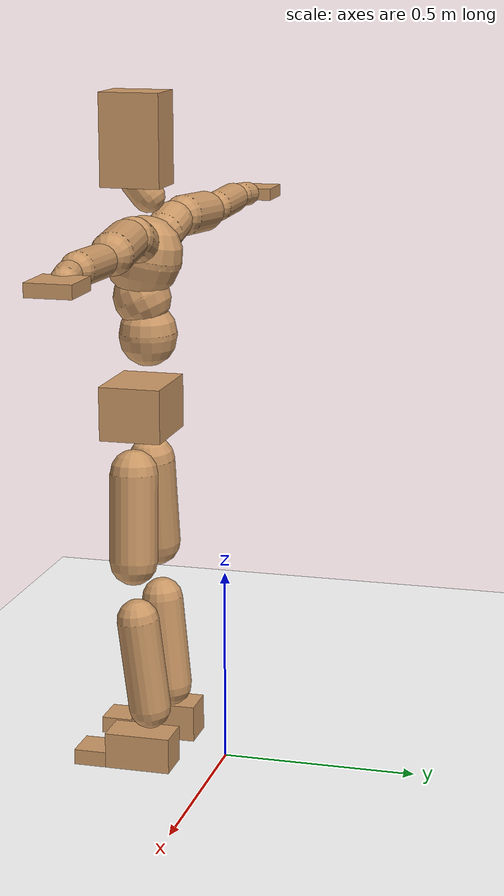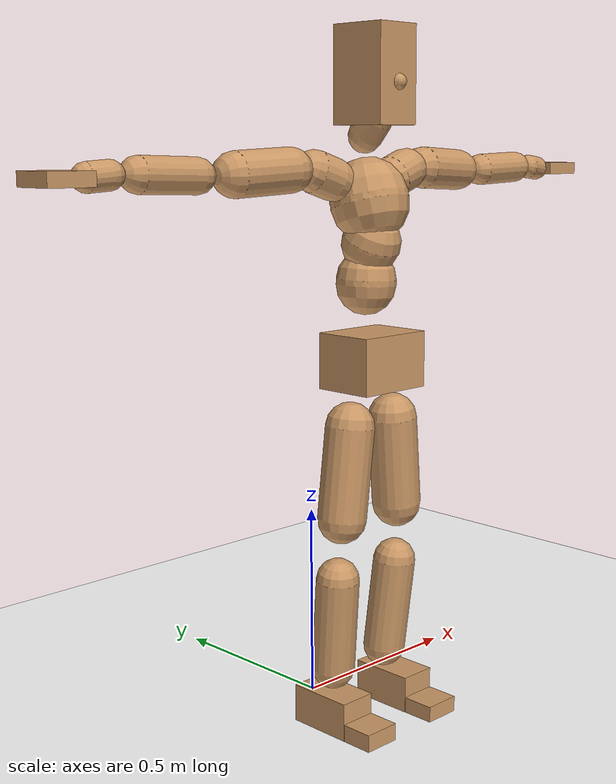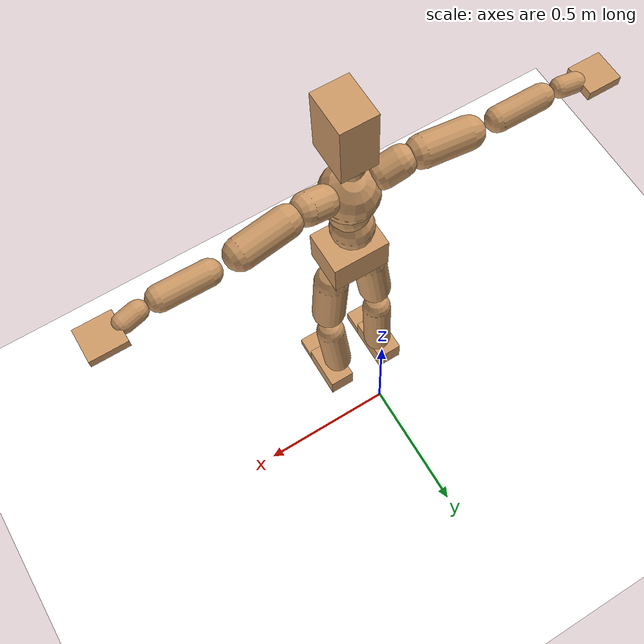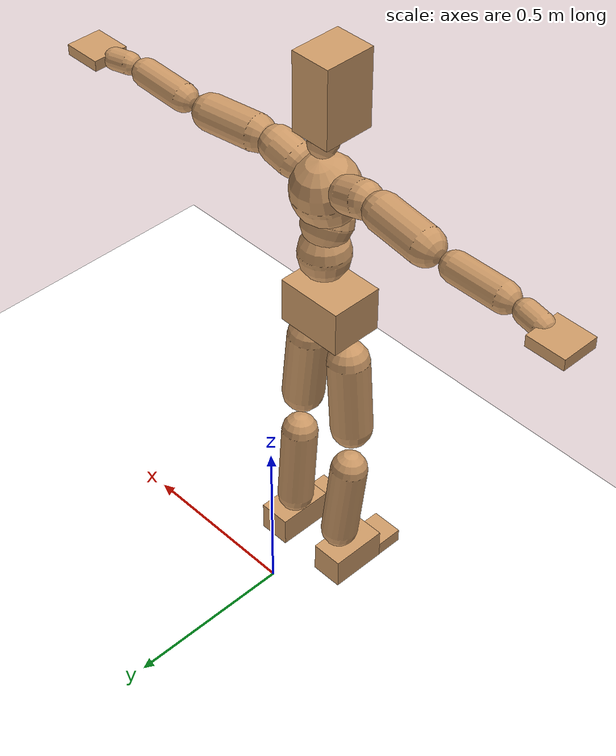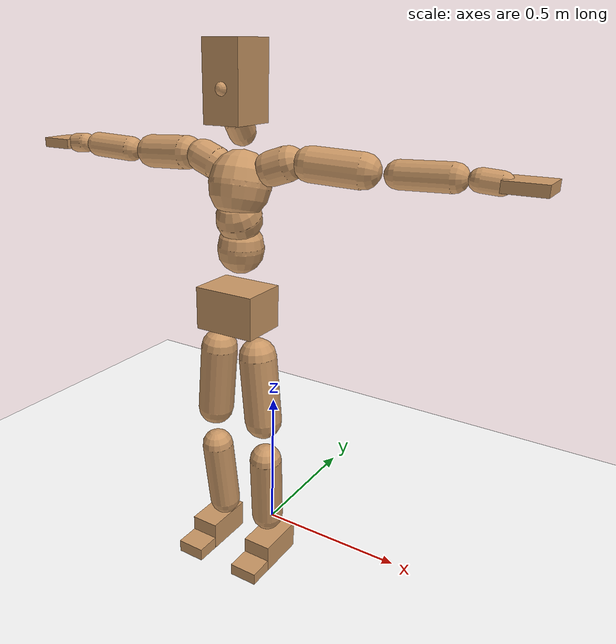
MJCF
<mujoco model="humanoid">
  <option integrator="implicitfast" />

  <visual>
    <global offwidth="1280" offheight="960" />
    <headlight active="1" ambient="0.34 0.34 0.34" diffuse="0.5 0.5 0.5" />
  </visual>

  <default>
    <joint damping="2" stiffness="2" armature="0.01" limited="true" solimplimit="0 .99 .01" />
    <geom condim="1" friction="0.7 0.005 0.0001" solimp=".99 .99 .003" solref="0.015 1" margin="0.001" rgba="0.8 0.6 .4 1" />
    <default class="smplcontact">
      <geom condim="3" friction="1. 0.005 0.0001" solref="0.015 1" solimp="0.98 0.98 0.001" priority="1" />
    </default>
    <default class="stiff_medium">
      <joint stiffness="10" />
    </default>
    <default class="stiff_medium_higher">
      <joint stiffness="50" />
    </default>
    <default class="stiff_high">
      <joint stiffness="100" />
    </default>
  </default>

  <asset>
    <texture type="skybox" builtin="gradient" rgb1="0.99 0.99 0.99" rgb2="0.608 0.828 0.892" width="100" />
    <texture builtin="flat" height="1278" mark="cross" markrgb="1 1 1" name="texgeom" random="0.01" rgb1="0.8 0.6 0.4" rgb2="0.8 0.6 0.4" type="cube" width="127" />
    <texture name="texplane" type="2d" builtin="checker" markrgb="1 1 1" rgb1="0.756 0.772 0.76" rgb2="0.6 0.6 0.6" width="100" height="100" />
    <material name="MatPlane" reflectance="0.5" texture="texplane" texrepeat="1 1" texuniform="true" />
    <material name="geom" texture="texgeom" texuniform="true" />
  </asset>

  <worldbody>
    <light name="tracking_light" pos="0 0 7" dir="0 0 -1" directional="true" cutoff="100" exponent="1" diffuse="1 1 1" specular="0.1 0.1 0.1" mode="trackcom" />
    <camera name="back" pos="0 3 2.4" xyaxes="-1 0 0 0 -1 2" mode="trackcom" />
    <camera name="side" pos="-3 0 2.4" xyaxes="0 -1 0 1 0 2" mode="trackcom" />
    <camera name="front_side" pos="-2.8 -2.8 0.8" xyaxes="0.5 -0.5 0 0.1 0.1 1" mode="trackcom" />
    <geom condim="3" name="floor" pos="0 0 0" rgba="1 1 1 1" size="100 100 .2" type="plane" material="MatPlane" />
    <body name="Pelvis" pos="-0.0018 -0.2233 0.9367" euler="90 0 0">
      <site name="Pelvis" size="0.01" />
      <freejoint name="Pelvis" />
      <geom type="box" pos="-0.0000 -0.0121 -0.0055" size="0.102089 0.068951 0.079265" quat="1.0000 0.0000 0.0000 0.0000" density="3165.830099" name="Pelvis" />
      <body name="L_Hip" pos="0.0695 -0.0914 -0.0068">
        <joint name="L_Hip_x" type="hinge" pos="0 0 0" axis="1 0 0" stiffness="10.0" range="-160.0 22.92" class="stiff_medium" damping="14.999999999999998" armature="0.009999999999999998"/>
        <joint name="L_Hip_y" type="hinge" pos="0 0 0" axis="0 1 0" stiffness="10.0" range="-70.0 70.0" class="stiff_medium" damping="10.000000000000004" armature="0.01000000000000001"/>
        <joint name="L_Hip_z" type="hinge" pos="0 0 0" axis="0 0 1" stiffness="10.0" range="-28.65 90.0" class="stiff_medium" damping="9.999999999999998" armature="0.009999999999999998"/>
        <geom type="capsule" density="2040.816327" fromto="0.0069 -0.075 -0.0009 0.0274 -0.3002 -0.0036" size="0.0615" name="L_Hip" />
        <body name="L_Knee" pos="0.0343 -0.3752 -0.0045">
          <joint name="L_Knee_x" type="hinge" pos="0 0 0" axis="1 0 0" range="-5.16 171.89" damping="7.999999999999996" armature="0.00999999999999999" stiffness="2.0"/>
          <joint name="L_Knee_y" type="hinge" pos="0 0 0" axis="0 1 0" range="-4.58 6.88" damping="8.000000000000004" armature="0.01000000000000001" stiffness="2.0"/>
          <joint name="L_Knee_z" type="hinge" pos="0 0 0" axis="0 0 1" range="-6.88 4.58" damping="7.999999999999995" armature="0.009999999999999988" stiffness="2.0"/>
          <geom type="capsule" density="1234.567901" fromto="-0.0027 -0.0796 -0.0087 -0.0109 -0.3184 -0.035" size="0.0541" name="L_Knee" />
          <body name="L_Ankle" pos="-0.0136 -0.398 -0.0437">
            <joint name="L_Ankle_x" type="hinge" pos="0 0 0" axis="1 0 0" range="-45.84 45.84" class="stiff_medium" damping="6.000000000000044" armature="0.010000000000000146" stiffness="10.0"/>
            <joint name="L_Ankle_y" type="hinge" pos="0 0 0" axis="0 1 0" range="-74.48 22.92" class="stiff_medium" damping="3.000000000000001" armature="0.010000000000000005" stiffness="10.0"/>
            <joint name="L_Ankle_z" type="hinge" pos="0 0 0" axis="0 0 1" range="-4.58 4.58" class="stiff_medium" damping="5.999999999999962" armature="0.009999999999999874" stiffness="10.0"/>
            <geom type="box" pos="0.0233 -0.0239 0.0242" size="0.0483 0.0464 0.085" quat="1.0000 0.0000 0.0000 0.0000" density="449.071558" name="L_Ankle" class="smplcontact" />
            <body name="L_Toe" pos="0.0264 -0.0558 0.1193">
              <joint name="L_Toe_x" type="hinge" pos="0 0 0" axis="1 0 0" range="-91.67 22.92" armature="0.009999999999998758" damping="1.9999999999998759" stiffness="2.0"/>
              <joint name="L_Toe_y" type="hinge" pos="0 0 0" axis="0 1 0" range="-4.58 4.58" armature="0.01" damping="2.0" stiffness="2.0"/>
              <joint name="L_Toe_z" type="hinge" pos="0 0 0" axis="0 0 1" range="-4.58 4.58" armature="0.009999999999999112" damping="1.9999999999999112" stiffness="2.0"/>
              <geom type="box" pos="-0.003 0.0055 0.0248" size="0.0478 0.02 0.0496" quat="1.0000 0.0000 0.0000 0.0000" density="423.206892" name="L_Toe" class="smplcontact" />
            </body>
          </body>
        </body>
      </body>
      <body name="R_Hip" pos="-0.0677 -0.0905 -0.0043">
        <joint name="R_Hip_x" type="hinge" pos="0 0 0" axis="1 0 0" stiffness="10.0" range="-160.0 22.92" class="stiff_medium" damping="14.999999999999998" armature="0.009999999999999998"/>
        <joint name="R_Hip_y" type="hinge" pos="0 0 0" axis="0 1 0" stiffness="10.0" range="-70.0 70.0" class="stiff_medium" damping="10.000000000000004" armature="0.01000000000000001"/>
        <joint name="R_Hip_z" type="hinge" pos="0 0 0" axis="0 0 1" stiffness="10.0" range="-90.0 28.65" class="stiff_medium" damping="9.999999999999998" armature="0.009999999999999998"/>
        <geom type="capsule" density="2040.816327" fromto="-0.0077 -0.0765 -0.0018 -0.0306 -0.3061 -0.0071" size="0.0606" name="R_Hip" />
        <body name="R_Knee" pos="-0.0383 -0.3826 -0.0089">
          <joint name="R_Knee_x" type="hinge" pos="0 0 0" axis="1 0 0" range="-5.16 171.89" damping="7.999999999999996" armature="0.00999999999999999" stiffness="2.0"/>
          <joint name="R_Knee_y" type="hinge" pos="0 0 0" axis="0 1 0" range="-6.88 4.58" damping="8.000000000000004" armature="0.01000000000000001" stiffness="2.0"/>
          <joint name="R_Knee_z" type="hinge" pos="0 0 0" axis="0 0 1" range="-4.58 6.88" damping="7.999999999999995" armature="0.009999999999999988" stiffness="2.0"/>
          <geom type="capsule" density="1234.567901" fromto="0.0032 -0.0797 -0.0085 0.0126 -0.3187 -0.0338" size="0.0541" name="R_Knee" />
          <body name="R_Ankle" pos="0.0158 -0.3984 -0.0423">
            <joint name="R_Ankle_x" type="hinge" pos="0 0 0" axis="1 0 0" range="-45.84 45.84" class="stiff_medium" damping="6.000000000000044" armature="0.010000000000000146" stiffness="10.0"/>
            <joint name="R_Ankle_y" type="hinge" pos="0 0 0" axis="0 1 0" range="-22.92 74.48" class="stiff_medium" damping="3.000000000000001" armature="0.010000000000000005" stiffness="10.0"/>
            <joint name="R_Ankle_z" type="hinge" pos="0 0 0" axis="0 0 1" range="-4.58 4.58" class="stiff_medium" damping="5.999999999999962" armature="0.009999999999999874" stiffness="10.0"/>
            <geom type="box" pos="-0.0212 -0.0174 0.0256" size="0.0483 0.0478 0.0865" quat="1.0000 0.0000 0.0000 0.0000" density="434.700981" name="R_Ankle" class="smplcontact" />
            <body name="R_Toe" pos="-0.0254 -0.0481 0.1233">
              <joint name="R_Toe_x" type="hinge" pos="0 0 0" axis="1 0 0" range="-91.67 22.92" armature="0.009999999999998758" damping="1.9999999999998759" stiffness="2.0"/>
              <joint name="R_Toe_y" type="hinge" pos="0 0 0" axis="0 1 0" range="-4.58 4.58" armature="0.01" damping="2.0" stiffness="2.0"/>
              <joint name="R_Toe_z" type="hinge" pos="0 0 0" axis="0 0 1" range="-4.58 4.58" armature="0.009999999999999112" damping="1.9999999999999112" stiffness="2.0"/>
              <geom type="box" pos="0.0042 0.0045 0.0227" size="0.0479 0.0216 0.0493" quat="1.0000 0.0000 0.0000 0.0000" density="407.384095" name="R_Toe" class="smplcontact" />
            </body>
          </body>
        </body>
      </body>
      <body name="Torso" pos="-0.0025 0.109 -0.0267">
        <joint name="Torso_x" type="hinge" pos="0 0 0" axis="1 0 0" range="-25.78 57.3" class="stiff_medium" damping="14.34881499150528" armature="0.009626952131358555" stiffness="9.505188666666667"/>
        <joint name="Torso_y" type="hinge" pos="0 0 0" axis="0 1 0" range="-57.3 57.3" class="stiff_high" damping="19.399410568388088" armature="0.009927980435269657" stiffness="94.76678888888888"/>
        <joint name="Torso_z" type="hinge" pos="0 0 0" axis="0 0 1" range="-34.38 34.38" class="stiff_high" damping="19.135316357887135" armature="0.00974737723363233" stiffness="93.91252727272729"/>
        <geom type="capsule" density="2040.816327" fromto="0.0025 0.0608 0.0005 0.003 0.0743 0.0006" size="0.0734395" name="Torso" />
        <body name="Spine" pos="0.0055 0.1352 0.0011">
          <joint name="Spine_x" type="hinge" pos="0 0 0" axis="1 0 0" stiffness="9.590490444444445" range="-25.78 57.3" class="stiff_medium" damping="14.498115129059588" armature="0.009740914989955978"/>
          <joint name="Spine_y" type="hinge" pos="0 0 0" axis="0 1 0" stiffness="9.582811333333334" range="-57.3 57.3" class="stiff_high" damping="7.808113988938924" armature="0.009940755174742256"/>
          <joint name="Spine_z" type="hinge" pos="0 0 0" axis="0 0 1" stiffness="19.251131111111114" range="-34.38 34.38" class="stiff_high" damping="11.701094051508546" armature="0.009877890147800312"/>
          <geom type="capsule" density="2040.816327" fromto="0.0007 0.0238 0.0114 0.0008 0.0291 0.014" size="0.0721025" name="Spine" />
          <body name="Chest" pos="0.0015 0.0529 0.0254">
            <joint name="Chest_x" type="hinge" pos="0 0 0" axis="1 0 0" stiffness="9.700505111111111" range="-25.78 57.3" class="stiff_medium" damping="14.620110662097048" armature="0.009793196142247336"/>
            <joint name="Chest_y" type="hinge" pos="0 0 0" axis="0 1 0" stiffness="9.841958" range="-57.3 57.3" class="stiff_high" damping="7.916663458159772" armature="0.009949995517558954"/>
            <joint name="Chest_z" type="hinge" pos="0 0 0" axis="0 0 1" stiffness="19.35166444444444" range="-34.38 34.38" class="stiff_high" damping="11.758130456155296" armature="0.009922605553651397"/>
            <geom type="capsule" density="2040.816327" fromto="-0.0009 0.0682 -0.0173 -0.001 0.0833 -0.0212" size="0.095691" name="Chest" />
            <body name="Neck" pos="-0.0028 0.2139 -0.0429">
              <joint name="Neck_x" type="hinge" pos="0 0 0" axis="1 0 0" range="-28.65 57.3" class="stiff_medium_higher" damping="9.94717577763261" armature="0.00997957272632952" stiffness="49.574419999999996"/>
              <joint name="Neck_y" type="hinge" pos="0 0 0" axis="0 1 0" range="-40.11 40.11" class="stiff_medium_higher" damping="9.926679970481365" armature="0.009920751927647931" stiffness="49.66305777777778"/>
              <joint name="Neck_z" type="hinge" pos="0 0 0" axis="0 0 1" range="-40.11 40.11" class="stiff_medium_higher" damping="9.974964133031946" armature="0.009983251812817081" stiffness="49.83341666666666"/>
              <geom type="capsule" density="1000" fromto="0.001 0.013 0.0103 0.0041 0.052 0.0411" size="0.041638" name="Neck" />
              <body name="Head" pos="0.0052 0.065 0.0513">
                <joint name="Head_x" type="hinge" pos="0 0 0" axis="1 0 0" range="-28.65 57.3" class="stiff_medium_higher" damping="2.0000000000000013" armature="0.010000000000000014" stiffness="50.0"/>
                <joint name="Head_y" type="hinge" pos="0 0 0" axis="0 1 0" range="-40.11 40.11" class="stiff_medium_higher" damping="2.0" armature="0.01" stiffness="50.0"/>
                <joint name="Head_z" type="hinge" pos="0 0 0" axis="0 0 1" range="-40.11 40.11" class="stiff_medium_higher" damping="2.000000000000002" armature="0.010000000000000024" stiffness="50.0"/>
                <geom type="box" pos="-0.0042 0.0876 -0.0116" size="0.0606 0.1154 0.076" quat="1.0000 0.0000 0.0000 0.0000" density="1018.069894" name="Head" />
                <geom type="capsule" name="nose" size="0.02 0.01" pos="0 0.07 0.05" quat="1 0 0 0" mass="0" contype="0" conaffinity="0" />
              </body>
            </body>
            <body name="L_Thorax" pos="0.0788 0.1217 -0.0341">
              <joint name="L_Thorax_x" type="hinge" pos="0 0 0" axis="1 0 0" range="-10.89 4.58" class="stiff_medium_higher" damping="20.000000000000014" armature="0.010000000000000016" stiffness="50.0"/>
              <joint name="L_Thorax_y" type="hinge" pos="0 0 0" axis="0 1 0" range="-28.65 17.19" class="stiff_medium_higher" damping="20.0" armature="0.01" stiffness="50.0"/>
              <joint name="L_Thorax_z" type="hinge" pos="0 0 0" axis="0 0 1" range="-31.51 40.11" class="stiff_medium_higher" damping="19.999999999999996" armature="0.009999999999999998" stiffness="50.0"/>
              <geom type="capsule" density="1000" fromto="0.0182 0.0061 -0.0018 0.0728 0.0244 -0.0071" size="0.0521" name="L_Thorax" />
              <body name="L_Shoulder" pos="0.091 0.0305 -0.0089">
                <joint name="L_Shoulder_x" type="hinge" pos="0 0 0" axis="1 0 0" range="-97.4 97.4" class="stiff_medium" damping="6.000000000000048" armature="0.01000000000000016" stiffness="10.0"/>
                <joint name="L_Shoulder_y" type="hinge" pos="0 0 0" axis="0 1 0" range="-108.86 80.21" class="stiff_medium" damping="6.0" armature="0.01" stiffness="10.0"/>
                <joint name="L_Shoulder_z" type="hinge" pos="0 0 0" axis="0 0 1" range="-97.4 85.94" class="stiff_medium" damping="6.000000000000002" armature="0.010000000000000005" stiffness="10.0"/>
                <geom type="capsule" density="1000" fromto="0.0519 -0.0026 -0.0055 0.2077 -0.0102 -0.022" size="0.0517" name="L_Shoulder" />
                <body name="L_Elbow" pos="0.2596 -0.0128 -0.0275">
                  <joint name="L_Elbow_x" type="hinge" pos="0 0 0" axis="1 0 0" range="-17.19 4.58" damping="4.999999999999904" armature="0.009999999999999619" stiffness="2.0"/>
                  <joint name="L_Elbow_y" type="hinge" pos="0 0 0" axis="0 1 0" range="-180.0 17.19" damping="5.0000000000000036" armature="0.010000000000000014" stiffness="2.0"/>
                  <joint name="L_Elbow_z" type="hinge" pos="0 0 0" axis="0 0 1" range="-100.84 4.58" damping="5.0" armature="0.010000000000000002" stiffness="2.0"/>
                  <geom type="capsule" density="1000" fromto="0.0498 0.0018 -0.0002 0.1994 0.0072 -0.0009" size="0.0405" name="L_Elbow" />
                  <body name="L_Wrist" pos="0.2492 0.009 -0.0012">
                    <joint name="L_Wrist_x" type="hinge" pos="0 0 0" axis="1 0 0" range="-180.0 22.92" armature="0.009999999999999428" damping="1.9999999999999427" stiffness="2.0"/>
                    <joint name="L_Wrist_y" type="hinge" pos="0 0 0" axis="0 1 0" range="-17.19 17.19" armature="0.009999999999999938" damping="1.9999999999999936" stiffness="2.0"/>
                    <joint name="L_Wrist_z" type="hinge" pos="0 0 0" axis="0 0 1" range="-22.92 22.92" armature="0.009999999999999978" damping="1.9999999999999978" stiffness="2.0"/>
                    <geom type="capsule" density="1000" fromto="0.0168 -0.0016 -0.003 0.0672 -0.0065 -0.012" size="0.0318" name="L_Wrist" class="smplcontact" />
                    <body name="L_Hand" pos="0.084 -0.0082 -0.0149">
                      <joint name="L_Hand_x" type="hinge" pos="0 0 0" axis="1 0 0" range="-17.19 17.19" armature="0.009999999999999825" damping="1.9999999999999825" stiffness="2.0"/>
                      <joint name="L_Hand_y" type="hinge" pos="0 0 0" axis="0 1 0" range="-51.57 51.57" armature="0.010000000000000078" damping="2.0000000000000075" stiffness="2.0"/>
                      <joint name="L_Hand_z" type="hinge" pos="0 0 0" axis="0 0 1" range="-91.67 91.67" armature="0.01000000000000016" damping="2.000000000000016" stiffness="2.0"/>
                      <geom type="box" pos="0.0493 0.001 -0.0058" size="0.0585 0.0158 0.0538" quat="1.0000 0.0000 0.0000 0.0000" density="400.552564" name="L_Hand" class="smplcontact" />
                    </body>
                  </body>
                </body>
              </body>
            </body>
            <body name="R_Thorax" pos="-0.0818 0.1188 -0.0386">
              <joint name="R_Thorax_x" type="hinge" pos="0 0 0" axis="1 0 0" range="-10.89 4.58" class="stiff_medium_higher" damping="20.000000000000014" armature="0.010000000000000016" stiffness="50.0"/>
              <joint name="R_Thorax_y" type="hinge" pos="0 0 0" axis="0 1 0" range="-17.19 28.65" class="stiff_medium_higher" damping="20.0" armature="0.01" stiffness="50.0"/>
              <joint name="R_Thorax_z" type="hinge" pos="0 0 0" axis="0 0 1" range="-40.11 31.51" class="stiff_medium_higher" damping="19.999999999999996" armature="0.009999999999999998" stiffness="50.0"/>
              <geom type="capsule" density="1000" fromto="-0.0192 0.0065 -0.0018 -0.0768 0.026 -0.0073" size="0.0511" name="R_Thorax" />
              <body name="R_Shoulder" pos="-0.096 0.0326 -0.0091">
                <joint name="R_Shoulder_x" type="hinge" pos="0 0 0" axis="1 0 0" range="-97.4 97.4" class="stiff_medium" damping="6.000000000000048" armature="0.01000000000000016" stiffness="10.0"/>
                <joint name="R_Shoulder_y" type="hinge" pos="0 0 0" axis="0 1 0" range="-80.21 108.86" class="stiff_medium" damping="6.0" armature="0.01" stiffness="10.0"/>
                <joint name="R_Shoulder_z" type="hinge" pos="0 0 0" axis="0 0 1" range="-85.94 97.4" class="stiff_medium" damping="6.000000000000002" armature="0.010000000000000005" stiffness="10.0"/>
                <geom type="capsule" density="1000" fromto="-0.0507 -0.0027 -0.0043 -0.203 -0.0107 -0.0171" size="0.0531" name="R_Shoulder" />
                <body name="R_Elbow" pos="-0.2537 -0.0133 -0.0214">
                  <joint name="R_Elbow_x" type="hinge" pos="0 0 0" axis="1 0 0" range="-17.19 4.58" damping="4.999999999999904" armature="0.009999999999999619" stiffness="2.0"/>
                  <joint name="R_Elbow_y" type="hinge" pos="0 0 0" axis="0 1 0" range="-17.19 180.0" damping="5.0000000000000036" armature="0.010000000000000014" stiffness="2.0"/>
                  <joint name="R_Elbow_z" type="hinge" pos="0 0 0" axis="0 0 1" range="-4.58 100.84" damping="5.0" armature="0.010000000000000002" stiffness="2.0"/>
                  <geom type="capsule" density="1000" fromto="-0.0511 0.0016 -0.0011 -0.2042 0.0062 -0.0044" size="0.0408" name="R_Elbow" />
                  <body name="R_Wrist" pos="-0.2553 0.0078 -0.0056">
                    <joint name="R_Wrist_x" type="hinge" pos="0 0 0" axis="1 0 0" range="-180.0 22.92" armature="0.009999999999999428" damping="1.9999999999999427" stiffness="2.0"/>
                    <joint name="R_Wrist_y" type="hinge" pos="0 0 0" axis="0 1 0" range="-17.19 17.19" armature="0.009999999999999938" damping="1.9999999999999936" stiffness="2.0"/>
                    <joint name="R_Wrist_z" type="hinge" pos="0 0 0" axis="0 0 1" range="-22.92 22.92" armature="0.009999999999999978" damping="1.9999999999999978" stiffness="2.0"/>
                    <geom type="capsule" density="1000" fromto="-0.0169 -0.0012 -0.0021 -0.0677 -0.0049 -0.0083" size="0.0326" name="R_Wrist" class="smplcontact" />
                    <body name="R_Hand" pos="-0.0846 -0.0061 -0.0103">
                      <joint name="R_Hand_x" type="hinge" pos="0 0 0" axis="1 0 0" range="-17.19 17.19" armature="0.009999999999999825" damping="1.9999999999999825" stiffness="2.0"/>
                      <joint name="R_Hand_y" type="hinge" pos="0 0 0" axis="0 1 0" range="-51.57 51.57" armature="0.010000000000000078" damping="2.0000000000000075" stiffness="2.0"/>
                      <joint name="R_Hand_z" type="hinge" pos="0 0 0" axis="0 0 1" range="-91.67 91.67" armature="0.01000000000000016" damping="2.000000000000016" stiffness="2.0"/>
                      <geom type="box" pos="-0.0462 -0.0009 -0.0079" size="0.0569 0.0164 0.0546" quat="1.0000 0.0000 0.0000 0.0000" density="403.679611" name="R_Hand" class="smplcontact" />
                    </body>
                  </body>
                </body>
              </body>
            </body>
          </body>
        </body>
      </body>
    </body>
  </worldbody>
  <actuator>
    <general name="L_Hip_x" joint="L_Hip_x" biastype="affine" gainprm="287.33006409732246" biasprm="-215.3247604770444 -180.0 -1.9999999999999998" ctrllimited="true" ctrlrange="-1 1" forcerange="-360.0 360.0" />
    <general name="L_Hip_y" joint="L_Hip_y" biastype="affine" gainprm="219.9114857512855" biasprm="0.0 -180.0 -2.000000000000001" ctrllimited="true" ctrlrange="-1 1" forcerange="-360.0 360.0" />
    <general name="L_Hip_z" joint="L_Hip_z" biastype="affine" gainprm="186.3749841742145" biasprm="96.3683546488669 -180.0 -1.9999999999999998" ctrllimited="true" ctrlrange="-1 1" forcerange="-360.0 360.0" />
    <general name="L_Knee_x" joint="L_Knee_x" biastype="affine" gainprm="278.10948965903646" biasprm="261.8988715665131 -180.0 -1.999999999999999" ctrllimited="true" ctrlrange="-1 1" forcerange="-360.0 360.0" />
    <general name="L_Knee_y" joint="L_Knee_y" biastype="affine" gainprm="18.001325905069514" biasprm="3.612831551628262 -180.0 -2.000000000000001" ctrllimited="true" ctrlrange="-1 1" forcerange="-360.0 360.0" />
    <general name="L_Knee_z" joint="L_Knee_z" biastype="affine" gainprm="18.001325905069514" biasprm="-3.612831551628262 -180.0 -1.9999999999999987" ctrllimited="true" ctrlrange="-1 1" forcerange="-360.0 360.0" />
    <general name="L_Ankle_x" joint="L_Ankle_x" biastype="affine" gainprm="72.00530362027807" biasprm="0.0 -90.0 -2.0000000000000147" ctrllimited="true" ctrlrange="-1 1" forcerange="-180.0 180.0" />
    <general name="L_Ankle_y" joint="L_Ankle_y" biastype="affine" gainprm="76.49778111491148" biasprm="-40.49512930477244 -90.0 -2.0000000000000004" ctrllimited="true" ctrlrange="-1 1" forcerange="-180.0 180.0" />
    <general name="L_Ankle_z" joint="L_Ankle_z" biastype="affine" gainprm="7.1942471767206255" biasprm="0.0 -90.0 -1.9999999999999873" ctrllimited="true" ctrlrange="-1 1" forcerange="-180.0 180.0" />
    <general name="L_Toe_x" joint="L_Toe_x" biastype="affine" gainprm="71.99902043497087" biasprm="-43.19689898685965 -72.0 -0.7999999999999504" ctrllimited="true" ctrlrange="-1 1" forcerange="-144.0 144.0" />
    <general name="L_Toe_y" joint="L_Toe_y" biastype="affine" gainprm="5.755397741376501" biasprm="0.0 -72.0 -0.8" ctrllimited="true" ctrlrange="-1 1" forcerange="-144.0 144.0" />
    <general name="L_Toe_z" joint="L_Toe_z" biastype="affine" gainprm="5.755397741376501" biasprm="0.0 -72.0 -0.7999999999999645" ctrllimited="true" ctrlrange="-1 1" forcerange="-144.0 144.0" />
    <general name="R_Hip_x" joint="R_Hip_x" biastype="affine" gainprm="287.33006409732246" biasprm="-215.3247604770444 -180.0 -1.9999999999999998" ctrllimited="true" ctrlrange="-1 1" forcerange="-360.0 360.0" />
    <general name="R_Hip_y" joint="R_Hip_y" biastype="affine" gainprm="219.9114857512855" biasprm="0.0 -180.0 -2.000000000000001" ctrllimited="true" ctrlrange="-1 1" forcerange="-360.0 360.0" />
    <general name="R_Hip_z" joint="R_Hip_z" biastype="affine" gainprm="186.3749841742145" biasprm="-96.3683546488669 -180.0 -1.9999999999999998" ctrllimited="true" ctrlrange="-1 1" forcerange="-360.0 360.0" />
    <general name="R_Knee_x" joint="R_Knee_x" biastype="affine" gainprm="278.10948965903646" biasprm="261.8988715665131 -180.0 -1.999999999999999" ctrllimited="true" ctrlrange="-1 1" forcerange="-360.0 360.0" />
    <general name="R_Knee_y" joint="R_Knee_y" biastype="affine" gainprm="18.001325905069514" biasprm="-3.612831551628262 -180.0 -2.000000000000001" ctrllimited="true" ctrlrange="-1 1" forcerange="-360.0 360.0" />
    <general name="R_Knee_z" joint="R_Knee_z" biastype="affine" gainprm="18.001325905069514" biasprm="3.612831551628262 -180.0 -1.9999999999999987" ctrllimited="true" ctrlrange="-1 1" forcerange="-360.0 360.0" />
    <general name="R_Ankle_x" joint="R_Ankle_x" biastype="affine" gainprm="72.00530362027807" biasprm="0.0 -90.0 -2.0000000000000147" ctrllimited="true" ctrlrange="-1 1" forcerange="-180.0 180.0" />
    <general name="R_Ankle_y" joint="R_Ankle_y" biastype="affine" gainprm="76.49778111491148" biasprm="40.49512930477244 -90.0 -2.0000000000000004" ctrllimited="true" ctrlrange="-1 1" forcerange="-180.0 180.0" />
    <general name="R_Ankle_z" joint="R_Ankle_z" biastype="affine" gainprm="7.1942471767206255" biasprm="0.0 -90.0 -1.9999999999999873" ctrllimited="true" ctrlrange="-1 1" forcerange="-180.0 180.0" />
    <general name="R_Toe_x" joint="R_Toe_x" biastype="affine" gainprm="71.99902043497087" biasprm="-43.19689898685965 -72.0 -0.7999999999999504" ctrllimited="true" ctrlrange="-1 1" forcerange="-144.0 144.0" />
    <general name="R_Toe_y" joint="R_Toe_y" biastype="affine" gainprm="5.755397741376501" biasprm="0.0 -72.0 -0.8" ctrllimited="true" ctrlrange="-1 1" forcerange="-144.0 144.0" />
    <general name="R_Toe_z" joint="R_Toe_z" biastype="affine" gainprm="5.755397741376501" biasprm="0.0 -72.0 -0.7999999999999645" ctrllimited="true" ctrlrange="-1 1" forcerange="-144.0 144.0" />
    <general name="Torso_x" joint="Torso_x" biastype="affine" gainprm="165.39251186828312" biasprm="62.74882010216999 -228.12452800000003 -3.8263506644014083" ctrllimited="true" ctrlrange="-1 1" forcerange="-342.186792 342.186792" />
    <general name="Torso_y" joint="Torso_y" biastype="affine" gainprm="227.45704690210792" biasprm="0.0 -227.44029333333333 -3.879882113677618" ctrllimited="true" ctrlrange="-1 1" forcerange="-341.16044 341.16044" />
    <general name="Torso_z" joint="Torso_z" biastype="affine" gainprm="135.24400080040746" biasprm="0.0 -225.3900654545455 -3.8270632715774267" ctrllimited="true" ctrlrange="-1 1" forcerange="-338.08509818181824 338.08509818181824" />
    <general name="Spine_x" joint="Spine_x" biastype="affine" gainprm="166.87678280579456" biasprm="63.3119426340713 -230.17177066666665 -3.86616403441589" ctrllimited="true" ctrlrange="-1 1" forcerange="-345.257656 345.257656" />
    <general name="Spine_y" joint="Spine_y" biastype="affine" gainprm="230.00441319750274" biasprm="0.0 -229.987472 -3.904056994469462" ctrllimited="true" ctrlrange="-1 1" forcerange="-344.981208 344.981208" />
    <general name="Spine_z" joint="Spine_z" biastype="affine" gainprm="138.61835406893368" biasprm="0.0 -231.01357333333334 -3.900364683836182" ctrllimited="true" ctrlrange="-1 1" forcerange="-346.52036000000004 346.52036000000004" />
    <general name="Chest_x" joint="Chest_x" biastype="affine" gainprm="168.79106380540918" biasprm="64.0382081264624 -232.81212266666668 -3.8986961765592127" ctrllimited="true" ctrlrange="-1 1" forcerange="-349.218184 349.218184" />
    <general name="Chest_y" joint="Chest_y" biastype="affine" gainprm="236.2243913360082" biasprm="0.0 -236.206992 -3.958331729079886" ctrllimited="true" ctrlrange="-1 1" forcerange="-354.310488 354.310488" />
    <general name="Chest_z" joint="Chest_z" biastype="affine" gainprm="139.3422473879962" biasprm="0.0 -232.21997333333331 -3.919376818718432" ctrllimited="true" ctrlrange="-1 1" forcerange="-348.32995999999997 348.32995999999997" />
    <general name="Neck_x" joint="Neck_x" biastype="affine" gainprm="26.772158729243884" biasprm="8.924052909747962 -35.6935824 -0.7957740622106089" ctrllimited="true" ctrlrange="-1 1" forcerange="-71.3871648 71.3871648" />
    <general name="Neck_y" joint="Neck_y" biastype="affine" gainprm="25.032024878002105" biasprm="0.0 -35.7574016 -0.7941343976385092" ctrllimited="true" ctrlrange="-1 1" forcerange="-71.5148032 71.5148032" />
    <general name="Neck_z" joint="Neck_z" biastype="affine" gainprm="25.117892082634103" biasprm="0.0 -35.88005999999999 -0.7979971306425557" ctrllimited="true" ctrlrange="-1 1" forcerange="-71.76011999999999 71.76011999999999" />
    <general name="Head_x" joint="Head_x" biastype="affine" gainprm="18.001325905069514" biasprm="6.000441968356505 -24.0 -0.8000000000000006" ctrllimited="true" ctrlrange="-1 1" forcerange="-48.0 48.0" />
    <general name="Head_y" joint="Head_y" biastype="affine" gainprm="16.801237511398213" biasprm="0.0 -24.0 -0.8" ctrllimited="true" ctrlrange="-1 1" forcerange="-48.0 48.0" />
    <general name="Head_z" joint="Head_z" biastype="affine" gainprm="16.801237511398213" biasprm="0.0 -24.0 -0.8000000000000009" ctrllimited="true" ctrlrange="-1 1" forcerange="-48.0 48.0" />
    <general name="L_Thorax_x" joint="L_Thorax_x" biastype="affine" gainprm="16.200146117011364" biasprm="-6.6078165480505335 -120.0 -1.6000000000000012" ctrllimited="true" ctrlrange="-1 1" forcerange="-240.0 240.0" />
    <general name="L_Thorax_y" joint="L_Thorax_y" biastype="affine" gainprm="48.00353574685204" biasprm="-12.00088393671301 -120.0 -1.6" ctrllimited="true" ctrlrange="-1 1" forcerange="-240.0 240.0" />
    <general name="L_Thorax_z" joint="L_Thorax_z" biastype="affine" gainprm="75.00028861670033" biasprm="9.00589894029074 -120.0 -1.5999999999999999" ctrllimited="true" ctrlrange="-1 1" forcerange="-240.0 240.0" />
    <general name="L_Shoulder_x" joint="L_Shoulder_x" biastype="affine" gainprm="81.5976331892389" biasprm="0.0 -48.0 -1.600000000000013" ctrllimited="true" ctrlrange="-1 1" forcerange="-96.0 96.0" />
    <general name="L_Shoulder_y" joint="L_Shoulder_y" biastype="affine" gainprm="79.19745640189629" biasprm="-12.00088393671301 -48.0 -1.6" ctrllimited="true" ctrlrange="-1 1" forcerange="-96.0 96.0" />
    <general name="L_Shoulder_z" joint="L_Shoulder_z" biastype="affine" gainprm="76.79727961455369" biasprm="-4.800353574685214 -48.0 -1.6000000000000005" ctrllimited="true" ctrlrange="-1 1" forcerange="-96.0 96.0" />
    <general name="L_Elbow_x" joint="L_Elbow_x" biastype="affine" gainprm="13.67849441372996" biasprm="-7.923096672353461 -72.0 -0.7999999999999847" ctrllimited="true" ctrlrange="-1 1" forcerange="-144.0 144.0" />
    <general name="L_Elbow_y" joint="L_Elbow_y" biastype="affine" gainprm="123.89813107227425" biasprm="-102.29653998619085 -72.0 -0.8000000000000006" ctrllimited="true" ctrlrange="-1 1" forcerange="-144.0 144.0" />
    <general name="L_Elbow_z" joint="L_Elbow_z" biastype="affine" gainprm="66.23733950828719" biasprm="-60.4819417669107 -72.0 -0.8" ctrllimited="true" ctrlrange="-1 1" forcerange="-144.0 144.0" />
    <general name="L_Wrist_x" joint="L_Wrist_x" biastype="affine" gainprm="21.24973270888136" biasprm="-16.449379134196157 -12.0 -0.7999999999999772" ctrllimited="true" ctrlrange="-1 1" forcerange="-24.0 24.0" />
    <general name="L_Wrist_y" joint="L_Wrist_y" biastype="affine" gainprm="3.6002651810139037" biasprm="0.0 -12.0 -0.7999999999999975" ctrllimited="true" ctrlrange="-1 1" forcerange="-24.0 24.0" />
    <general name="L_Wrist_z" joint="L_Wrist_z" biastype="affine" gainprm="4.800353574685205" biasprm="0.0 -12.0 -0.7999999999999992" ctrllimited="true" ctrlrange="-1 1" forcerange="-24.0 24.0" />
    <general name="L_Hand_x" joint="L_Hand_x" biastype="affine" gainprm="3.6002651810139037" biasprm="0.0 -12.0 -0.799999999999993" ctrllimited="true" ctrlrange="-1 1" forcerange="-24.0 24.0" />
    <general name="L_Hand_y" joint="L_Hand_y" biastype="affine" gainprm="10.800795543041708" biasprm="0.0 -12.0 -0.800000000000003" ctrllimited="true" ctrlrange="-1 1" forcerange="-24.0 24.0" />
    <general name="L_Hand_z" joint="L_Hand_z" biastype="affine" gainprm="19.199319903638422" biasprm="0.0 -12.0 -0.8000000000000065" ctrllimited="true" ctrlrange="-1 1" forcerange="-24.0 24.0" />
    <general name="R_Thorax_x" joint="R_Thorax_x" biastype="affine" gainprm="16.200146117011364" biasprm="-6.6078165480505335 -120.0 -1.6000000000000012" ctrllimited="true" ctrlrange="-1 1" forcerange="-240.0 240.0" />
    <general name="R_Thorax_y" joint="R_Thorax_y" biastype="affine" gainprm="48.00353574685204" biasprm="12.000883936713002 -120.0 -1.6" ctrllimited="true" ctrlrange="-1 1" forcerange="-240.0 240.0" />
    <general name="R_Thorax_z" joint="R_Thorax_z" biastype="affine" gainprm="75.00028861670033" biasprm="-9.00589894029074 -120.0 -1.5999999999999999" ctrllimited="true" ctrlrange="-1 1" forcerange="-240.0 240.0" />
    <general name="R_Shoulder_x" joint="R_Shoulder_x" biastype="affine" gainprm="81.5976331892389" biasprm="0.0 -48.0 -1.600000000000013" ctrllimited="true" ctrlrange="-1 1" forcerange="-96.0 96.0" />
    <general name="R_Shoulder_y" joint="R_Shoulder_y" biastype="affine" gainprm="79.19745640189629" biasprm="12.00088393671301 -48.0 -1.6" ctrllimited="true" ctrlrange="-1 1" forcerange="-96.0 96.0" />
    <general name="R_Shoulder_z" joint="R_Shoulder_z" biastype="affine" gainprm="76.79727961455369" biasprm="4.800353574685204 -48.0 -1.6000000000000005" ctrllimited="true" ctrlrange="-1 1" forcerange="-96.0 96.0" />
    <general name="R_Elbow_x" joint="R_Elbow_x" biastype="affine" gainprm="13.67849441372996" biasprm="-7.923096672353461 -72.0 -0.7999999999999847" ctrllimited="true" ctrlrange="-1 1" forcerange="-144.0 144.0" />
    <general name="R_Elbow_y" joint="R_Elbow_y" biastype="affine" gainprm="123.89813107227425" biasprm="102.29653998619085 -72.0 -0.8000000000000006" ctrllimited="true" ctrlrange="-1 1" forcerange="-144.0 144.0" />
    <general name="R_Elbow_z" joint="R_Elbow_z" biastype="affine" gainprm="66.23733950828719" biasprm="60.481941766910694 -72.0 -0.8" ctrllimited="true" ctrlrange="-1 1" forcerange="-144.0 144.0" />
    <general name="R_Wrist_x" joint="R_Wrist_x" biastype="affine" gainprm="21.24973270888136" biasprm="-16.449379134196157 -12.0 -0.7999999999999772" ctrllimited="true" ctrlrange="-1 1" forcerange="-24.0 24.0" />
    <general name="R_Wrist_y" joint="R_Wrist_y" biastype="affine" gainprm="3.6002651810139037" biasprm="0.0 -12.0 -0.7999999999999975" ctrllimited="true" ctrlrange="-1 1" forcerange="-24.0 24.0" />
    <general name="R_Wrist_z" joint="R_Wrist_z" biastype="affine" gainprm="4.800353574685205" biasprm="0.0 -12.0 -0.7999999999999992" ctrllimited="true" ctrlrange="-1 1" forcerange="-24.0 24.0" />
    <general name="R_Hand_x" joint="R_Hand_x" biastype="affine" gainprm="3.6002651810139037" biasprm="0.0 -12.0 -0.799999999999993" ctrllimited="true" ctrlrange="-1 1" forcerange="-24.0 24.0" />
    <general name="R_Hand_y" joint="R_Hand_y" biastype="affine" gainprm="10.800795543041708" biasprm="0.0 -12.0 -0.800000000000003" ctrllimited="true" ctrlrange="-1 1" forcerange="-24.0 24.0" />
    <general name="R_Hand_z" joint="R_Hand_z" biastype="affine" gainprm="19.199319903638422" biasprm="0.0 -12.0 -0.8000000000000065" ctrllimited="true" ctrlrange="-1 1" forcerange="-24.0 24.0" />
  </actuator>
  <contact>
    <exclude body1="Torso" body2="Chest" />
    <exclude body1="Head" body2="Chest" />
    <exclude body1="R_Knee" body2="R_Toe" />
    <exclude body1="R_Knee" body2="L_Ankle" />
    <exclude body1="R_Knee" body2="L_Toe" />
    <exclude body1="L_Knee" body2="L_Toe" />
    <exclude body1="L_Knee" body2="R_Ankle" />
    <exclude body1="L_Knee" body2="R_Toe" />
    <exclude body1="L_Shoulder" body2="Chest" />
    <exclude body1="R_Shoulder" body2="Chest" />
  </contact>
  <sensor>
    <framelinvel name="sensor_Pelvis_framelinvel" objtype="xbody" objname="Pelvis" />
    <framelinvel name="sensor_L_Hip_framelinvel" objtype="xbody" objname="L_Hip" />
    <framelinvel name="sensor_L_Knee_framelinvel" objtype="xbody" objname="L_Knee" />
    <framelinvel name="sensor_L_Ankle_framelinvel" objtype="xbody" objname="L_Ankle" />
    <framelinvel name="sensor_L_Toe_framelinvel" objtype="xbody" objname="L_Toe" />
    <framelinvel name="sensor_R_Hip_framelinvel" objtype="xbody" objname="R_Hip" />
    <framelinvel name="sensor_R_Knee_framelinvel" objtype="xbody" objname="R_Knee" />
    <framelinvel name="sensor_R_Ankle_framelinvel" objtype="xbody" objname="R_Ankle" />
    <framelinvel name="sensor_R_Toe_framelinvel" objtype="xbody" objname="R_Toe" />
    <framelinvel name="sensor_Torso_framelinvel" objtype="xbody" objname="Torso" />
    <framelinvel name="sensor_Spine_framelinvel" objtype="xbody" objname="Spine" />
    <framelinvel name="sensor_Chest_framelinvel" objtype="xbody" objname="Chest" />
    <framelinvel name="sensor_Neck_framelinvel" objtype="xbody" objname="Neck" />
    <framelinvel name="sensor_Head_framelinvel" objtype="xbody" objname="Head" />
    <framelinvel name="sensor_L_Thorax_framelinvel" objtype="xbody" objname="L_Thorax" />
    <framelinvel name="sensor_L_Shoulder_framelinvel" objtype="xbody" objname="L_Shoulder" />
    <framelinvel name="sensor_L_Elbow_framelinvel" objtype="xbody" objname="L_Elbow" />
    <framelinvel name="sensor_L_Wrist_framelinvel" objtype="xbody" objname="L_Wrist" />
    <framelinvel name="sensor_L_Hand_framelinvel" objtype="xbody" objname="L_Hand" />
    <framelinvel name="sensor_R_Thorax_framelinvel" objtype="xbody" objname="R_Thorax" />
    <framelinvel name="sensor_R_Shoulder_framelinvel" objtype="xbody" objname="R_Shoulder" />
    <framelinvel name="sensor_R_Elbow_framelinvel" objtype="xbody" objname="R_Elbow" />
    <framelinvel name="sensor_R_Wrist_framelinvel" objtype="xbody" objname="R_Wrist" />
    <framelinvel name="sensor_R_Hand_framelinvel" objtype="xbody" objname="R_Hand" />
    <frameangvel name="sensor_Pelvis_frameangvel" objtype="xbody" objname="Pelvis" />
    <frameangvel name="sensor_L_Hip_frameangvel" objtype="xbody" objname="L_Hip" />
    <frameangvel name="sensor_L_Knee_frameangvel" objtype="xbody" objname="L_Knee" />
    <frameangvel name="sensor_L_Ankle_frameangvel" objtype="xbody" objname="L_Ankle" />
    <frameangvel name="sensor_L_Toe_frameangvel" objtype="xbody" objname="L_Toe" />
    <frameangvel name="sensor_R_Hip_frameangvel" objtype="xbody" objname="R_Hip" />
    <frameangvel name="sensor_R_Knee_frameangvel" objtype="xbody" objname="R_Knee" />
    <frameangvel name="sensor_R_Ankle_frameangvel" objtype="xbody" objname="R_Ankle" />
    <frameangvel name="sensor_R_Toe_frameangvel" objtype="xbody" objname="R_Toe" />
    <frameangvel name="sensor_Torso_frameangvel" objtype="xbody" objname="Torso" />
    <frameangvel name="sensor_Spine_frameangvel" objtype="xbody" objname="Spine" />
    <frameangvel name="sensor_Chest_frameangvel" objtype="xbody" objname="Chest" />
    <frameangvel name="sensor_Neck_frameangvel" objtype="xbody" objname="Neck" />
    <frameangvel name="sensor_Head_frameangvel" objtype="xbody" objname="Head" />
    <frameangvel name="sensor_L_Thorax_frameangvel" objtype="xbody" objname="L_Thorax" />
    <frameangvel name="sensor_L_Shoulder_frameangvel" objtype="xbody" objname="L_Shoulder" />
    <frameangvel name="sensor_L_Elbow_frameangvel" objtype="xbody" objname="L_Elbow" />
    <frameangvel name="sensor_L_Wrist_frameangvel" objtype="xbody" objname="L_Wrist" />
    <frameangvel name="sensor_L_Hand_frameangvel" objtype="xbody" objname="L_Hand" />
    <frameangvel name="sensor_R_Thorax_frameangvel" objtype="xbody" objname="R_Thorax" />
    <frameangvel name="sensor_R_Shoulder_frameangvel" objtype="xbody" objname="R_Shoulder" />
    <frameangvel name="sensor_R_Elbow_frameangvel" objtype="xbody" objname="R_Elbow" />
    <frameangvel name="sensor_R_Wrist_frameangvel" objtype="xbody" objname="R_Wrist" />
    <frameangvel name="sensor_R_Hand_frameangvel" objtype="xbody" objname="R_Hand" />
    <subtreelinvel name="Chest_subtreelinvel" body="Chest" />
    <gyro name="Pelvis_gyro" site="Pelvis" />
  </sensor>
</mujoco>
